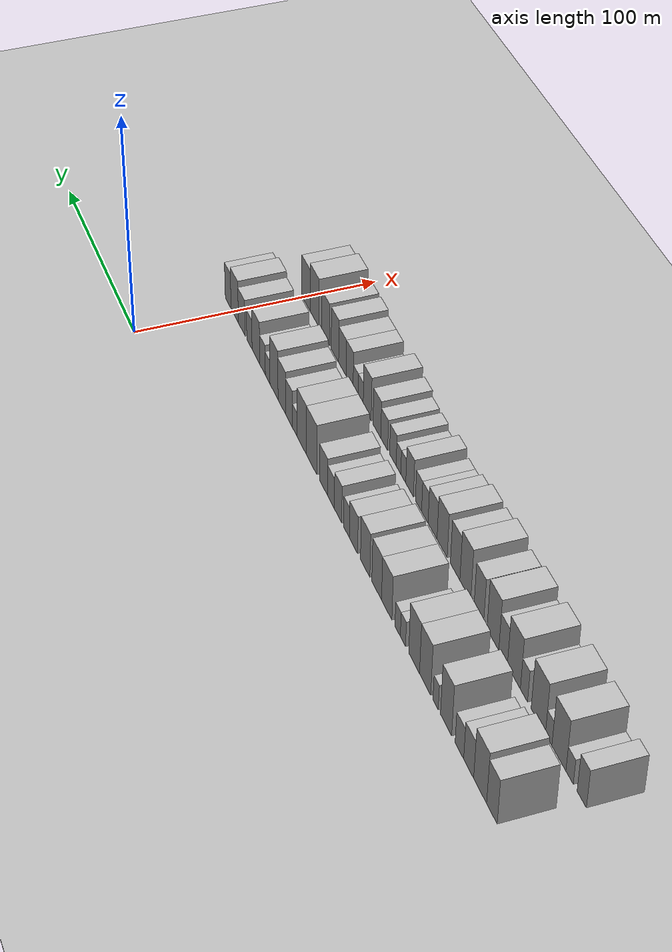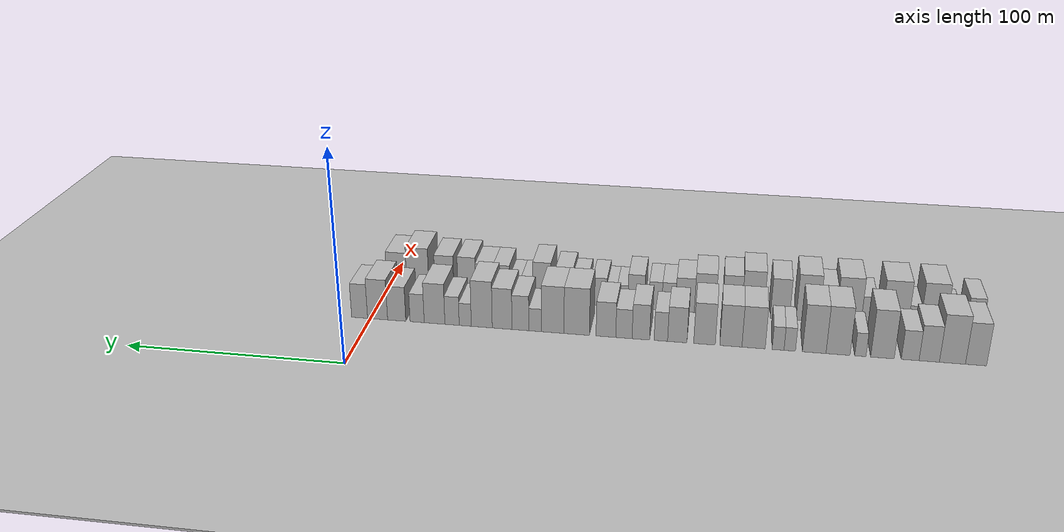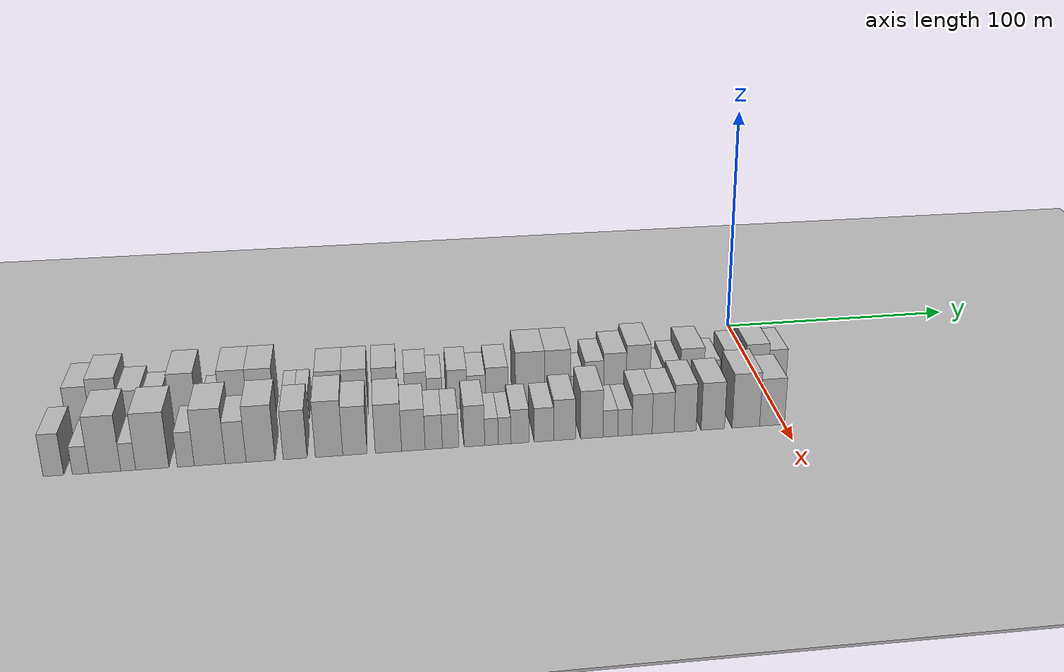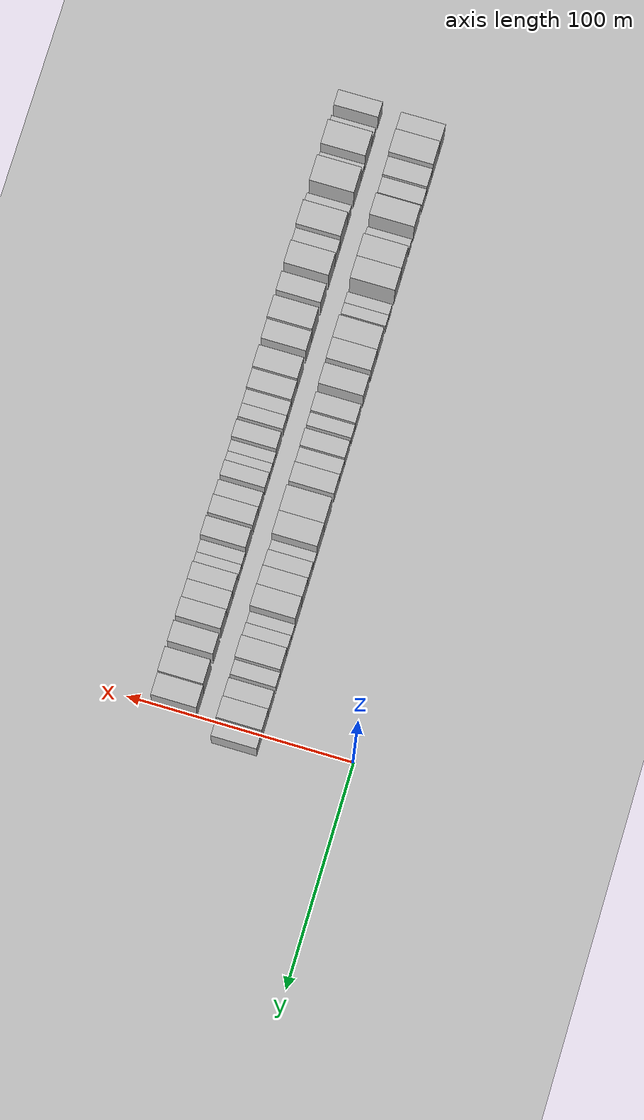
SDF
<sdf version="1.6">
 <world name="default">
  <include><name>ground_plane_1</name><uri>model://HANNAS_ground_plane</uri></include>
  <include>
   <name>ground_plane_2</name>
   <uri>model://HANNAS_ground_plane</uri>
   <pose>100 0 0  0 0 0</pose>
  </include>
  <model name="building_1">
   <static>1</static>
   <pose>50.0000 -270.5878 0 0.000000 0.000000 0.000000</pose>
   <link name="link">
    <pose>0 0 10.50 0 0 0</pose>
    <collision name="collision"><geometry><box><size>20.0000 8.8244 21.0000</size></box></geometry></collision>
    <visual name="visual">
     <cast_shadows>0</cast_shadows>
     <geometry><box><size>20.0000 8.8244 21.0000</size></box></geometry>
     <material>
      <script>
       <uri>model://HANNAS_wall/materials/scripts</uri>
       <uri>model://HANNAS_wall/materials/textures</uri>
       <name>vrc/HANNAS_wall</name>
      </script>
     </material>
    </visual>
   </link>
  </model>
  <model name="building_2">
   <static>1</static>
   <pose>50.0000 -260.7174 0 0.000000 0.000000 0.000000</pose>
   <link name="link">
    <pose>0 0 12.00 0 0 0</pose>
    <collision name="collision"><geometry><box><size>20.0000 10.9165 24.0000</size></box></geometry></collision>
    <visual name="visual">
     <cast_shadows>0</cast_shadows>
     <geometry><box><size>20.0000 10.9165 24.0000</size></box></geometry>
     <material>
      <script>
       <uri>model://HANNAS_wall/materials/scripts</uri>
       <uri>model://HANNAS_wall/materials/textures</uri>
       <name>vrc/HANNAS_wall</name>
      </script>
     </material>
    </visual>
   </link>
  </model>
  <model name="building_3">
   <static>1</static>
   <pose>50.0000 -250.9753 0 0.000000 0.000000 0.000000</pose>
   <link name="link">
    <pose>0 0 9.00 0 0 0</pose>
    <collision name="collision"><geometry><box><size>20.0000 8.5676 18.0000</size></box></geometry></collision>
    <visual name="visual">
     <cast_shadows>0</cast_shadows>
     <geometry><box><size>20.0000 8.5676 18.0000</size></box></geometry>
     <material>
      <script>
       <uri>model://HANNAS_wall/materials/scripts</uri>
       <uri>model://HANNAS_wall/materials/textures</uri>
       <name>vrc/HANNAS_wall</name>
      </script>
     </material>
    </visual>
   </link>
  </model>
  <model name="building_4">
   <static>1</static>
   <pose>50.0000 -242.9473 0 0.000000 0.000000 0.000000</pose>
   <link name="link">
    <pose>0 0 7.50 0 0 0</pose>
    <collision name="collision"><geometry><box><size>20.0000 7.4884 15.0000</size></box></geometry></collision>
    <visual name="visual">
     <cast_shadows>0</cast_shadows>
     <geometry><box><size>20.0000 7.4884 15.0000</size></box></geometry>
     <material>
      <script>
       <uri>model://HANNAS_wall/materials/scripts</uri>
       <uri>model://HANNAS_wall/materials/textures</uri>
       <name>vrc/HANNAS_wall</name>
      </script>
     </material>
    </visual>
   </link>
  </model>
  <model name="building_5">
   <static>1</static>
   <pose>50.0000 -231.1971 0 0.000000 0.000000 0.000000</pose>
   <link name="link">
    <pose>0 0 12.00 0 0 0</pose>
    <collision name="collision"><geometry><box><size>20.0000 10.0120 24.0000</size></box></geometry></collision>
    <visual name="visual">
     <cast_shadows>0</cast_shadows>
     <geometry><box><size>20.0000 10.0120 24.0000</size></box></geometry>
     <material>
      <script>
       <uri>model://HANNAS_wall/materials/scripts</uri>
       <uri>model://HANNAS_wall/materials/textures</uri>
       <name>vrc/HANNAS_wall</name>
      </script>
     </material>
    </visual>
   </link>
  </model>
  <model name="building_6">
   <static>1</static>
   <pose>50.0000 -221.7817 0 0.000000 0.000000 0.000000</pose>
   <link name="link">
    <pose>0 0 6.00 0 0 0</pose>
    <collision name="collision"><geometry><box><size>20.0000 4.8187 12.0000</size></box></geometry></collision>
    <visual name="visual">
     <cast_shadows>0</cast_shadows>
     <geometry><box><size>20.0000 4.8187 12.0000</size></box></geometry>
     <material>
      <script>
       <uri>model://HANNAS_wall/materials/scripts</uri>
       <uri>model://HANNAS_wall/materials/textures</uri>
       <name>vrc/HANNAS_wall</name>
      </script>
     </material>
    </visual>
   </link>
  </model>
  <model name="building_7">
   <static>1</static>
   <pose>50.0000 -212.1964 0 0.000000 0.000000 0.000000</pose>
   <link name="link">
    <pose>0 0 12.00 0 0 0</pose>
    <collision name="collision"><geometry><box><size>20.0000 10.3518 24.0000</size></box></geometry></collision>
    <visual name="visual">
     <cast_shadows>0</cast_shadows>
     <geometry><box><size>20.0000 10.3518 24.0000</size></box></geometry>
     <material>
      <script>
       <uri>model://HANNAS_wall/materials/scripts</uri>
       <uri>model://HANNAS_wall/materials/textures</uri>
       <name>vrc/HANNAS_wall</name>
      </script>
     </material>
    </visual>
   </link>
  </model>
  <model name="building_8">
   <static>1</static>
   <pose>50.0000 -201.9319 0 0.000000 0.000000 0.000000</pose>
   <link name="link">
    <pose>0 0 12.00 0 0 0</pose>
    <collision name="collision"><geometry><box><size>20.0000 10.1771 24.0000</size></box></geometry></collision>
    <visual name="visual">
     <cast_shadows>0</cast_shadows>
     <geometry><box><size>20.0000 10.1771 24.0000</size></box></geometry>
     <material>
      <script>
       <uri>model://HANNAS_wall/materials/scripts</uri>
       <uri>model://HANNAS_wall/materials/textures</uri>
       <name>vrc/HANNAS_wall</name>
      </script>
     </material>
    </visual>
   </link>
  </model>
  <model name="building_9">
   <static>1</static>
   <pose>50.0000 -191.3443 0 0.000000 0.000000 0.000000</pose>
   <link name="link">
    <pose>0 0 6.00 0 0 0</pose>
    <collision name="collision"><geometry><box><size>20.0000 4.9982 12.0000</size></box></geometry></collision>
    <visual name="visual">
     <cast_shadows>0</cast_shadows>
     <geometry><box><size>20.0000 4.9982 12.0000</size></box></geometry>
     <material>
      <script>
       <uri>model://HANNAS_wall/materials/scripts</uri>
       <uri>model://HANNAS_wall/materials/textures</uri>
       <name>vrc/HANNAS_wall</name>
      </script>
     </material>
    </visual>
   </link>
  </model>
  <model name="building_10">
   <static>1</static>
   <pose>50.0000 -186.2483 0 0.000000 0.000000 0.000000</pose>
   <link name="link">
    <pose>0 0 6.00 0 0 0</pose>
    <collision name="collision"><geometry><box><size>20.0000 5.1938 12.0000</size></box></geometry></collision>
    <visual name="visual">
     <cast_shadows>0</cast_shadows>
     <geometry><box><size>20.0000 5.1938 12.0000</size></box></geometry>
     <material>
      <script>
       <uri>model://HANNAS_wall/materials/scripts</uri>
       <uri>model://HANNAS_wall/materials/textures</uri>
       <name>vrc/HANNAS_wall</name>
      </script>
     </material>
    </visual>
   </link>
  </model>
  <model name="building_11">
   <static>1</static>
   <pose>50.0000 -175.5425 0 0.000000 0.000000 0.000000</pose>
   <link name="link">
    <pose>0 0 10.50 0 0 0</pose>
    <collision name="collision"><geometry><box><size>20.0000 10.2178 21.0000</size></box></geometry></collision>
    <visual name="visual">
     <cast_shadows>0</cast_shadows>
     <geometry><box><size>20.0000 10.2178 21.0000</size></box></geometry>
     <material>
      <script>
       <uri>model://HANNAS_wall/materials/scripts</uri>
       <uri>model://HANNAS_wall/materials/textures</uri>
       <name>vrc/HANNAS_wall</name>
      </script>
     </material>
    </visual>
   </link>
  </model>
  <model name="building_12">
   <static>1</static>
   <pose>50.0000 -165.5731 0 0.000000 0.000000 0.000000</pose>
   <link name="link">
    <pose>0 0 10.50 0 0 0</pose>
    <collision name="collision"><geometry><box><size>20.0000 9.7209 21.0000</size></box></geometry></collision>
    <visual name="visual">
     <cast_shadows>0</cast_shadows>
     <geometry><box><size>20.0000 9.7209 21.0000</size></box></geometry>
     <material>
      <script>
       <uri>model://HANNAS_wall/materials/scripts</uri>
       <uri>model://HANNAS_wall/materials/textures</uri>
       <name>vrc/HANNAS_wall</name>
      </script>
     </material>
    </visual>
   </link>
  </model>
  <model name="building_13">
   <static>1</static>
   <pose>50.0000 -153.9268 0 0.000000 0.000000 0.000000</pose>
   <link name="link">
    <pose>0 0 10.50 0 0 0</pose>
    <collision name="collision"><geometry><box><size>20.0000 9.5718 21.0000</size></box></geometry></collision>
    <visual name="visual">
     <cast_shadows>0</cast_shadows>
     <geometry><box><size>20.0000 9.5718 21.0000</size></box></geometry>
     <material>
      <script>
       <uri>model://HANNAS_wall/materials/scripts</uri>
       <uri>model://HANNAS_wall/materials/textures</uri>
       <name>vrc/HANNAS_wall</name>
      </script>
     </material>
    </visual>
   </link>
  </model>
  <model name="building_14">
   <static>1</static>
   <pose>50.0000 -141.8351 0 0.000000 0.000000 0.000000</pose>
   <link name="link">
    <pose>0 0 9.00 0 0 0</pose>
    <collision name="collision"><geometry><box><size>20.0000 8.6117 18.0000</size></box></geometry></collision>
    <visual name="visual">
     <cast_shadows>0</cast_shadows>
     <geometry><box><size>20.0000 8.6117 18.0000</size></box></geometry>
     <material>
      <script>
       <uri>model://HANNAS_wall/materials/scripts</uri>
       <uri>model://HANNAS_wall/materials/textures</uri>
       <name>vrc/HANNAS_wall</name>
      </script>
     </material>
    </visual>
   </link>
  </model>
  <model name="building_15">
   <static>1</static>
   <pose>50.0000 -134.5054 0 0.000000 0.000000 0.000000</pose>
   <link name="link">
    <pose>0 0 7.50 0 0 0</pose>
    <collision name="collision"><geometry><box><size>20.0000 6.0475 15.0000</size></box></geometry></collision>
    <visual name="visual">
     <cast_shadows>0</cast_shadows>
     <geometry><box><size>20.0000 6.0475 15.0000</size></box></geometry>
     <material>
      <script>
       <uri>model://HANNAS_wall/materials/scripts</uri>
       <uri>model://HANNAS_wall/materials/textures</uri>
       <name>vrc/HANNAS_wall</name>
      </script>
     </material>
    </visual>
   </link>
  </model>
  <model name="building_16">
   <static>1</static>
   <pose>50.0000 -125.5305 0 0.000000 0.000000 0.000000</pose>
   <link name="link">
    <pose>0 0 9.00 0 0 0</pose>
    <collision name="collision"><geometry><box><size>20.0000 7.9024 18.0000</size></box></geometry></collision>
    <visual name="visual">
     <cast_shadows>0</cast_shadows>
     <geometry><box><size>20.0000 7.9024 18.0000</size></box></geometry>
     <material>
      <script>
       <uri>model://HANNAS_wall/materials/scripts</uri>
       <uri>model://HANNAS_wall/materials/textures</uri>
       <name>vrc/HANNAS_wall</name>
      </script>
     </material>
    </visual>
   </link>
  </model>
  <model name="building_17">
   <static>1</static>
   <pose>50.0000 -117.8935 0 0.000000 0.000000 0.000000</pose>
   <link name="link">
    <pose>0 0 7.50 0 0 0</pose>
    <collision name="collision"><geometry><box><size>20.0000 7.3716 15.0000</size></box></geometry></collision>
    <visual name="visual">
     <cast_shadows>0</cast_shadows>
     <geometry><box><size>20.0000 7.3716 15.0000</size></box></geometry>
     <material>
      <script>
       <uri>model://HANNAS_wall/materials/scripts</uri>
       <uri>model://HANNAS_wall/materials/textures</uri>
       <name>vrc/HANNAS_wall</name>
      </script>
     </material>
    </visual>
   </link>
  </model>
  <model name="building_18">
   <static>1</static>
   <pose>50.0000 -109.7421 0 0.000000 0.000000 0.000000</pose>
   <link name="link">
    <pose>0 0 9.00 0 0 0</pose>
    <collision name="collision"><geometry><box><size>20.0000 8.9311 18.0000</size></box></geometry></collision>
    <visual name="visual">
     <cast_shadows>0</cast_shadows>
     <geometry><box><size>20.0000 8.9311 18.0000</size></box></geometry>
     <material>
      <script>
       <uri>model://HANNAS_wall/materials/scripts</uri>
       <uri>model://HANNAS_wall/materials/textures</uri>
       <name>vrc/HANNAS_wall</name>
      </script>
     </material>
    </visual>
   </link>
  </model>
  <model name="building_19">
   <static>1</static>
   <pose>50.0000 -96.4635 0 0.000000 0.000000 0.000000</pose>
   <link name="link">
    <pose>0 0 12.00 0 0 0</pose>
    <collision name="collision"><geometry><box><size>20.0000 11.6262 24.0000</size></box></geometry></collision>
    <visual name="visual">
     <cast_shadows>0</cast_shadows>
     <geometry><box><size>20.0000 11.6262 24.0000</size></box></geometry>
     <material>
      <script>
       <uri>model://HANNAS_wall/materials/scripts</uri>
       <uri>model://HANNAS_wall/materials/textures</uri>
       <name>vrc/HANNAS_wall</name>
      </script>
     </material>
    </visual>
   </link>
  </model>
  <model name="building_20">
   <static>1</static>
   <pose>50.0000 -85.4118 0 0.000000 0.000000 0.000000</pose>
   <link name="link">
    <pose>0 0 12.00 0 0 0</pose>
    <collision name="collision"><geometry><box><size>20.0000 10.4770 24.0000</size></box></geometry></collision>
    <visual name="visual">
     <cast_shadows>0</cast_shadows>
     <geometry><box><size>20.0000 10.4770 24.0000</size></box></geometry>
     <material>
      <script>
       <uri>model://HANNAS_wall/materials/scripts</uri>
       <uri>model://HANNAS_wall/materials/textures</uri>
       <name>vrc/HANNAS_wall</name>
      </script>
     </material>
    </visual>
   </link>
  </model>
  <model name="building_21">
   <static>1</static>
   <pose>50.0000 -77.3133 0 0.000000 0.000000 0.000000</pose>
   <link name="link">
    <pose>0 0 6.00 0 0 0</pose>
    <collision name="collision"><geometry><box><size>20.0000 5.7202 12.0000</size></box></geometry></collision>
    <visual name="visual">
     <cast_shadows>0</cast_shadows>
     <geometry><box><size>20.0000 5.7202 12.0000</size></box></geometry>
     <material>
      <script>
       <uri>model://HANNAS_wall/materials/scripts</uri>
       <uri>model://HANNAS_wall/materials/textures</uri>
       <name>vrc/HANNAS_wall</name>
      </script>
     </material>
    </visual>
   </link>
  </model>
  <model name="building_22">
   <static>1</static>
   <pose>50.0000 -70.5814 0 0.000000 0.000000 0.000000</pose>
   <link name="link">
    <pose>0 0 9.00 0 0 0</pose>
    <collision name="collision"><geometry><box><size>20.0000 7.7435 18.0000</size></box></geometry></collision>
    <visual name="visual">
     <cast_shadows>0</cast_shadows>
     <geometry><box><size>20.0000 7.7435 18.0000</size></box></geometry>
     <material>
      <script>
       <uri>model://HANNAS_wall/materials/scripts</uri>
       <uri>model://HANNAS_wall/materials/textures</uri>
       <name>vrc/HANNAS_wall</name>
      </script>
     </material>
    </visual>
   </link>
  </model>
  <model name="building_23">
   <static>1</static>
   <pose>50.0000 -62.1440 0 0.000000 0.000000 0.000000</pose>
   <link name="link">
    <pose>0 0 10.50 0 0 0</pose>
    <collision name="collision"><geometry><box><size>20.0000 9.1313 21.0000</size></box></geometry></collision>
    <visual name="visual">
     <cast_shadows>0</cast_shadows>
     <geometry><box><size>20.0000 9.1313 21.0000</size></box></geometry>
     <material>
      <script>
       <uri>model://HANNAS_wall/materials/scripts</uri>
       <uri>model://HANNAS_wall/materials/textures</uri>
       <name>vrc/HANNAS_wall</name>
      </script>
     </material>
    </visual>
   </link>
  </model>
  <model name="building_24">
   <static>1</static>
   <pose>50.0000 -52.6865 0 0.000000 0.000000 0.000000</pose>
   <link name="link">
    <pose>0 0 12.00 0 0 0</pose>
    <collision name="collision"><geometry><box><size>20.0000 9.7836 24.0000</size></box></geometry></collision>
    <visual name="visual">
     <cast_shadows>0</cast_shadows>
     <geometry><box><size>20.0000 9.7836 24.0000</size></box></geometry>
     <material>
      <script>
       <uri>model://HANNAS_wall/materials/scripts</uri>
       <uri>model://HANNAS_wall/materials/textures</uri>
       <name>vrc/HANNAS_wall</name>
      </script>
     </material>
    </visual>
   </link>
  </model>
  <model name="building_25">
   <static>1</static>
   <pose>50.0000 -44.9658 0 0.000000 0.000000 0.000000</pose>
   <link name="link">
    <pose>0 0 6.00 0 0 0</pose>
    <collision name="collision"><geometry><box><size>20.0000 5.6578 12.0000</size></box></geometry></collision>
    <visual name="visual">
     <cast_shadows>0</cast_shadows>
     <geometry><box><size>20.0000 5.6578 12.0000</size></box></geometry>
     <material>
      <script>
       <uri>model://HANNAS_wall/materials/scripts</uri>
       <uri>model://HANNAS_wall/materials/textures</uri>
       <name>vrc/HANNAS_wall</name>
      </script>
     </material>
    </visual>
   </link>
  </model>
  <model name="building_26">
   <static>1</static>
   <pose>50.0000 -38.7752 0 0.000000 0.000000 0.000000</pose>
   <link name="link">
    <pose>0 0 7.50 0 0 0</pose>
    <collision name="collision"><geometry><box><size>20.0000 6.7235 15.0000</size></box></geometry></collision>
    <visual name="visual">
     <cast_shadows>0</cast_shadows>
     <geometry><box><size>20.0000 6.7235 15.0000</size></box></geometry>
     <material>
      <script>
       <uri>model://HANNAS_wall/materials/scripts</uri>
       <uri>model://HANNAS_wall/materials/textures</uri>
       <name>vrc/HANNAS_wall</name>
      </script>
     </material>
    </visual>
   </link>
  </model>
  <model name="building_27">
   <static>1</static>
   <pose>50.0000 -30.5352 0 0.000000 0.000000 0.000000</pose>
   <link name="link">
    <pose>0 0 10.50 0 0 0</pose>
    <collision name="collision"><geometry><box><size>20.0000 9.7567 21.0000</size></box></geometry></collision>
    <visual name="visual">
     <cast_shadows>0</cast_shadows>
     <geometry><box><size>20.0000 9.7567 21.0000</size></box></geometry>
     <material>
      <script>
       <uri>model://HANNAS_wall/materials/scripts</uri>
       <uri>model://HANNAS_wall/materials/textures</uri>
       <name>vrc/HANNAS_wall</name>
      </script>
     </material>
    </visual>
   </link>
  </model>
  <model name="building_28">
   <static>1</static>
   <pose>50.0000 -22.3069 0 0.000000 0.000000 0.000000</pose>
   <link name="link">
    <pose>0 0 7.50 0 0 0</pose>
    <collision name="collision"><geometry><box><size>20.0000 6.6999 15.0000</size></box></geometry></collision>
    <visual name="visual">
     <cast_shadows>0</cast_shadows>
     <geometry><box><size>20.0000 6.6999 15.0000</size></box></geometry>
     <material>
      <script>
       <uri>model://HANNAS_wall/materials/scripts</uri>
       <uri>model://HANNAS_wall/materials/textures</uri>
       <name>vrc/HANNAS_wall</name>
      </script>
     </material>
    </visual>
   </link>
  </model>
  <model name="building_29">
   <static>1</static>
   <pose>50.0000 -12.6182 0 0.000000 0.000000 0.000000</pose>
   <link name="link">
    <pose>0 0 9.00 0 0 0</pose>
    <collision name="collision"><geometry><box><size>20.0000 8.6775 18.0000</size></box></geometry></collision>
    <visual name="visual">
     <cast_shadows>0</cast_shadows>
     <geometry><box><size>20.0000 8.6775 18.0000</size></box></geometry>
     <material>
      <script>
       <uri>model://HANNAS_wall/materials/scripts</uri>
       <uri>model://HANNAS_wall/materials/textures</uri>
       <name>vrc/HANNAS_wall</name>
      </script>
     </material>
    </visual>
   </link>
  </model>
  <model name="building_30">
   <static>1</static>
   <pose>50.0000 -3.4968 0 0.000000 0.000000 0.000000</pose>
   <link name="link">
    <pose>0 0 10.50 0 0 0</pose>
    <collision name="collision"><geometry><box><size>20.0000 9.5653 21.0000</size></box></geometry></collision>
    <visual name="visual">
     <cast_shadows>0</cast_shadows>
     <geometry><box><size>20.0000 9.5653 21.0000</size></box></geometry>
     <material>
      <script>
       <uri>model://HANNAS_wall/materials/scripts</uri>
       <uri>model://HANNAS_wall/materials/textures</uri>
       <name>vrc/HANNAS_wall</name>
      </script>
     </material>
    </visual>
   </link>
  </model>
  <model name="building_31">
   <static>1</static>
   <pose>50.0000 5.1058 0 0.000000 0.000000 0.000000</pose>
   <link name="link">
    <pose>0 0 9.00 0 0 0</pose>
    <collision name="collision"><geometry><box><size>20.0000 7.6399 18.0000</size></box></geometry></collision>
    <visual name="visual">
     <cast_shadows>0</cast_shadows>
     <geometry><box><size>20.0000 7.6399 18.0000</size></box></geometry>
     <material>
      <script>
       <uri>model://HANNAS_wall/materials/scripts</uri>
       <uri>model://HANNAS_wall/materials/textures</uri>
       <name>vrc/HANNAS_wall</name>
      </script>
     </material>
    </visual>
   </link>
  </model>
  <model name="building_62">
   <static>1</static>
   <pose>79.0000 -274.3850 0 0.000000 0.000000 0.000000</pose>
   <link name="link">
    <pose>0 0 9.00 0 0 0</pose>
    <collision name="collision"><geometry><box><size>20.0000 7.2299 18.0000</size></box></geometry></collision>
    <visual name="visual">
     <cast_shadows>0</cast_shadows>
     <geometry><box><size>20.0000 7.2299 18.0000</size></box></geometry>
     <material>
      <script>
       <uri>model://HANNAS_wall/materials/scripts</uri>
       <uri>model://HANNAS_wall/materials/textures</uri>
       <name>vrc/HANNAS_wall</name>
      </script>
     </material>
    </visual>
   </link>
  </model>
  <model name="building_63">
   <static>1</static>
   <pose>79.0000 -264.8488 0 0.000000 0.000000 0.000000</pose>
   <link name="link">
    <pose>0 0 6.00 0 0 0</pose>
    <collision name="collision"><geometry><box><size>20.0000 5.8426 12.0000</size></box></geometry></collision>
    <visual name="visual">
     <cast_shadows>0</cast_shadows>
     <geometry><box><size>20.0000 5.8426 12.0000</size></box></geometry>
     <material>
      <script>
       <uri>model://HANNAS_wall/materials/scripts</uri>
       <uri>model://HANNAS_wall/materials/textures</uri>
       <name>vrc/HANNAS_wall</name>
      </script>
     </material>
    </visual>
   </link>
  </model>
  <model name="building_64">
   <static>1</static>
   <pose>79.0000 -256.2770 0 0.000000 0.000000 0.000000</pose>
   <link name="link">
    <pose>0 0 12.00 0 0 0</pose>
    <collision name="collision"><geometry><box><size>20.0000 11.3010 24.0000</size></box></geometry></collision>
    <visual name="visual">
     <cast_shadows>0</cast_shadows>
     <geometry><box><size>20.0000 11.3010 24.0000</size></box></geometry>
     <material>
      <script>
       <uri>model://HANNAS_wall/materials/scripts</uri>
       <uri>model://HANNAS_wall/materials/textures</uri>
       <name>vrc/HANNAS_wall</name>
      </script>
     </material>
    </visual>
   </link>
  </model>
  <model name="building_65">
   <static>1</static>
   <pose>79.0000 -247.9805 0 0.000000 0.000000 0.000000</pose>
   <link name="link">
    <pose>0 0 6.00 0 0 0</pose>
    <collision name="collision"><geometry><box><size>20.0000 5.2920 12.0000</size></box></geometry></collision>
    <visual name="visual">
     <cast_shadows>0</cast_shadows>
     <geometry><box><size>20.0000 5.2920 12.0000</size></box></geometry>
     <material>
      <script>
       <uri>model://HANNAS_wall/materials/scripts</uri>
       <uri>model://HANNAS_wall/materials/textures</uri>
       <name>vrc/HANNAS_wall</name>
      </script>
     </material>
    </visual>
   </link>
  </model>
  <model name="building_66">
   <static>1</static>
   <pose>79.0000 -239.3951 0 0.000000 0.000000 0.000000</pose>
   <link name="link">
    <pose>0 0 12.00 0 0 0</pose>
    <collision name="collision"><geometry><box><size>20.0000 11.8787 24.0000</size></box></geometry></collision>
    <visual name="visual">
     <cast_shadows>0</cast_shadows>
     <geometry><box><size>20.0000 11.8787 24.0000</size></box></geometry>
     <material>
      <script>
       <uri>model://HANNAS_wall/materials/scripts</uri>
       <uri>model://HANNAS_wall/materials/textures</uri>
       <name>vrc/HANNAS_wall</name>
      </script>
     </material>
    </visual>
   </link>
  </model>
  <model name="building_67">
   <static>1</static>
   <pose>79.0000 -227.4109 0 0.000000 0.000000 0.000000</pose>
   <link name="link">
    <pose>0 0 7.50 0 0 0</pose>
    <collision name="collision"><geometry><box><size>20.0000 6.0897 15.0000</size></box></geometry></collision>
    <visual name="visual">
     <cast_shadows>0</cast_shadows>
     <geometry><box><size>20.0000 6.0897 15.0000</size></box></geometry>
     <material>
      <script>
       <uri>model://HANNAS_wall/materials/scripts</uri>
       <uri>model://HANNAS_wall/materials/textures</uri>
       <name>vrc/HANNAS_wall</name>
      </script>
     </material>
    </visual>
   </link>
  </model>
  <model name="building_68">
   <static>1</static>
   <pose>79.0000 -218.7669 0 0.000000 0.000000 0.000000</pose>
   <link name="link">
    <pose>0 0 12.00 0 0 0</pose>
    <collision name="collision"><geometry><box><size>20.0000 11.1985 24.0000</size></box></geometry></collision>
    <visual name="visual">
     <cast_shadows>0</cast_shadows>
     <geometry><box><size>20.0000 11.1985 24.0000</size></box></geometry>
     <material>
      <script>
       <uri>model://HANNAS_wall/materials/scripts</uri>
       <uri>model://HANNAS_wall/materials/textures</uri>
       <name>vrc/HANNAS_wall</name>
      </script>
     </material>
    </visual>
   </link>
  </model>
  <model name="building_69">
   <static>1</static>
   <pose>79.0000 -209.3993 0 0.000000 0.000000 0.000000</pose>
   <link name="link">
    <pose>0 0 9.00 0 0 0</pose>
    <collision name="collision"><geometry><box><size>20.0000 7.5368 18.0000</size></box></geometry></collision>
    <visual name="visual">
     <cast_shadows>0</cast_shadows>
     <geometry><box><size>20.0000 7.5368 18.0000</size></box></geometry>
     <material>
      <script>
       <uri>model://HANNAS_wall/materials/scripts</uri>
       <uri>model://HANNAS_wall/materials/textures</uri>
       <name>vrc/HANNAS_wall</name>
      </script>
     </material>
    </visual>
   </link>
  </model>
  <model name="building_70">
   <static>1</static>
   <pose>79.0000 -200.3698 0 0.000000 0.000000 0.000000</pose>
   <link name="link">
    <pose>0 0 12.00 0 0 0</pose>
    <collision name="collision"><geometry><box><size>20.0000 10.5223 24.0000</size></box></geometry></collision>
    <visual name="visual">
     <cast_shadows>0</cast_shadows>
     <geometry><box><size>20.0000 10.5223 24.0000</size></box></geometry>
     <material>
      <script>
       <uri>model://HANNAS_wall/materials/scripts</uri>
       <uri>model://HANNAS_wall/materials/textures</uri>
       <name>vrc/HANNAS_wall</name>
      </script>
     </material>
    </visual>
   </link>
  </model>
  <model name="building_71">
   <static>1</static>
   <pose>79.0000 -187.7248 0 0.000000 0.000000 0.000000</pose>
   <link name="link">
    <pose>0 0 10.50 0 0 0</pose>
    <collision name="collision"><geometry><box><size>20.0000 8.7676 21.0000</size></box></geometry></collision>
    <visual name="visual">
     <cast_shadows>0</cast_shadows>
     <geometry><box><size>20.0000 8.7676 21.0000</size></box></geometry>
     <material>
      <script>
       <uri>model://HANNAS_wall/materials/scripts</uri>
       <uri>model://HANNAS_wall/materials/textures</uri>
       <name>vrc/HANNAS_wall</name>
      </script>
     </material>
    </visual>
   </link>
  </model>
  <model name="building_72">
   <static>1</static>
   <pose>79.0000 -175.2675 0 0.000000 0.000000 0.000000</pose>
   <link name="link">
    <pose>0 0 12.00 0 0 0</pose>
    <collision name="collision"><geometry><box><size>20.0000 10.1471 24.0000</size></box></geometry></collision>
    <visual name="visual">
     <cast_shadows>0</cast_shadows>
     <geometry><box><size>20.0000 10.1471 24.0000</size></box></geometry>
     <material>
      <script>
       <uri>model://HANNAS_wall/materials/scripts</uri>
       <uri>model://HANNAS_wall/materials/textures</uri>
       <name>vrc/HANNAS_wall</name>
      </script>
     </material>
    </visual>
   </link>
  </model>
  <model name="building_73">
   <static>1</static>
   <pose>79.0000 -165.6837 0 0.000000 0.000000 0.000000</pose>
   <link name="link">
    <pose>0 0 10.50 0 0 0</pose>
    <collision name="collision"><geometry><box><size>20.0000 9.0206 21.0000</size></box></geometry></collision>
    <visual name="visual">
     <cast_shadows>0</cast_shadows>
     <geometry><box><size>20.0000 9.0206 21.0000</size></box></geometry>
     <material>
      <script>
       <uri>model://HANNAS_wall/materials/scripts</uri>
       <uri>model://HANNAS_wall/materials/textures</uri>
       <name>vrc/HANNAS_wall</name>
      </script>
     </material>
    </visual>
   </link>
  </model>
  <model name="building_74">
   <static>1</static>
   <pose>79.0000 -153.2430 0 0.000000 0.000000 0.000000</pose>
   <link name="link">
    <pose>0 0 10.50 0 0 0</pose>
    <collision name="collision"><geometry><box><size>20.0000 9.8607 21.0000</size></box></geometry></collision>
    <visual name="visual">
     <cast_shadows>0</cast_shadows>
     <geometry><box><size>20.0000 9.8607 21.0000</size></box></geometry>
     <material>
      <script>
       <uri>model://HANNAS_wall/materials/scripts</uri>
       <uri>model://HANNAS_wall/materials/textures</uri>
       <name>vrc/HANNAS_wall</name>
      </script>
     </material>
    </visual>
   </link>
  </model>
  <model name="building_75">
   <static>1</static>
   <pose>79.0000 -143.9045 0 0.000000 0.000000 0.000000</pose>
   <link name="link">
    <pose>0 0 9.00 0 0 0</pose>
    <collision name="collision"><geometry><box><size>20.0000 8.8164 18.0000</size></box></geometry></collision>
    <visual name="visual">
     <cast_shadows>0</cast_shadows>
     <geometry><box><size>20.0000 8.8164 18.0000</size></box></geometry>
     <material>
      <script>
       <uri>model://HANNAS_wall/materials/scripts</uri>
       <uri>model://HANNAS_wall/materials/textures</uri>
       <name>vrc/HANNAS_wall</name>
      </script>
     </material>
    </visual>
   </link>
  </model>
  <model name="building_76">
   <static>1</static>
   <pose>79.0000 -136.2761 0 0.000000 0.000000 0.000000</pose>
   <link name="link">
    <pose>0 0 7.50 0 0 0</pose>
    <collision name="collision"><geometry><box><size>20.0000 6.4404 15.0000</size></box></geometry></collision>
    <visual name="visual">
     <cast_shadows>0</cast_shadows>
     <geometry><box><size>20.0000 6.4404 15.0000</size></box></geometry>
     <material>
      <script>
       <uri>model://HANNAS_wall/materials/scripts</uri>
       <uri>model://HANNAS_wall/materials/textures</uri>
       <name>vrc/HANNAS_wall</name>
      </script>
     </material>
    </visual>
   </link>
  </model>
  <model name="building_77">
   <static>1</static>
   <pose>79.0000 -129.9518 0 0.000000 0.000000 0.000000</pose>
   <link name="link">
    <pose>0 0 7.50 0 0 0</pose>
    <collision name="collision"><geometry><box><size>20.0000 6.2082 15.0000</size></box></geometry></collision>
    <visual name="visual">
     <cast_shadows>0</cast_shadows>
     <geometry><box><size>20.0000 6.2082 15.0000</size></box></geometry>
     <material>
      <script>
       <uri>model://HANNAS_wall/materials/scripts</uri>
       <uri>model://HANNAS_wall/materials/textures</uri>
       <name>vrc/HANNAS_wall</name>
      </script>
     </material>
    </visual>
   </link>
  </model>
  <model name="building_78">
   <static>1</static>
   <pose>79.0000 -120.9470 0 0.000000 0.000000 0.000000</pose>
   <link name="link">
    <pose>0 0 9.00 0 0 0</pose>
    <collision name="collision"><geometry><box><size>20.0000 7.8013 18.0000</size></box></geometry></collision>
    <visual name="visual">
     <cast_shadows>0</cast_shadows>
     <geometry><box><size>20.0000 7.8013 18.0000</size></box></geometry>
     <material>
      <script>
       <uri>model://HANNAS_wall/materials/scripts</uri>
       <uri>model://HANNAS_wall/materials/textures</uri>
       <name>vrc/HANNAS_wall</name>
      </script>
     </material>
    </visual>
   </link>
  </model>
  <model name="building_79">
   <static>1</static>
   <pose>79.0000 -114.4750 0 0.000000 0.000000 0.000000</pose>
   <link name="link">
    <pose>0 0 6.00 0 0 0</pose>
    <collision name="collision"><geometry><box><size>20.0000 5.1426 12.0000</size></box></geometry></collision>
    <visual name="visual">
     <cast_shadows>0</cast_shadows>
     <geometry><box><size>20.0000 5.1426 12.0000</size></box></geometry>
     <material>
      <script>
       <uri>model://HANNAS_wall/materials/scripts</uri>
       <uri>model://HANNAS_wall/materials/textures</uri>
       <name>vrc/HANNAS_wall</name>
      </script>
     </material>
    </visual>
   </link>
  </model>
  <model name="building_80">
   <static>1</static>
   <pose>79.0000 -109.4943 0 0.000000 0.000000 0.000000</pose>
   <link name="link">
    <pose>0 0 6.00 0 0 0</pose>
    <collision name="collision"><geometry><box><size>20.0000 4.8187 12.0000</size></box></geometry></collision>
    <visual name="visual">
     <cast_shadows>0</cast_shadows>
     <geometry><box><size>20.0000 4.8187 12.0000</size></box></geometry>
     <material>
      <script>
       <uri>model://HANNAS_wall/materials/scripts</uri>
       <uri>model://HANNAS_wall/materials/textures</uri>
       <name>vrc/HANNAS_wall</name>
      </script>
     </material>
    </visual>
   </link>
  </model>
  <model name="building_81">
   <static>1</static>
   <pose>79.0000 -103.6256 0 0.000000 0.000000 0.000000</pose>
   <link name="link">
    <pose>0 0 7.50 0 0 0</pose>
    <collision name="collision"><geometry><box><size>20.0000 6.9189 15.0000</size></box></geometry></collision>
    <visual name="visual">
     <cast_shadows>0</cast_shadows>
     <geometry><box><size>20.0000 6.9189 15.0000</size></box></geometry>
     <material>
      <script>
       <uri>model://HANNAS_wall/materials/scripts</uri>
       <uri>model://HANNAS_wall/materials/textures</uri>
       <name>vrc/HANNAS_wall</name>
      </script>
     </material>
    </visual>
   </link>
  </model>
  <model name="building_82">
   <static>1</static>
   <pose>79.0000 -94.4573 0 0.000000 0.000000 0.000000</pose>
   <link name="link">
    <pose>0 0 7.50 0 0 0</pose>
    <collision name="collision"><geometry><box><size>20.0000 7.4176 15.0000</size></box></geometry></collision>
    <visual name="visual">
     <cast_shadows>0</cast_shadows>
     <geometry><box><size>20.0000 7.4176 15.0000</size></box></geometry>
     <material>
      <script>
       <uri>model://HANNAS_wall/materials/scripts</uri>
       <uri>model://HANNAS_wall/materials/textures</uri>
       <name>vrc/HANNAS_wall</name>
      </script>
     </material>
    </visual>
   </link>
  </model>
  <model name="building_83">
   <static>1</static>
   <pose>79.0000 -86.5653 0 0.000000 0.000000 0.000000</pose>
   <link name="link">
    <pose>0 0 9.00 0 0 0</pose>
    <collision name="collision"><geometry><box><size>20.0000 8.3665 18.0000</size></box></geometry></collision>
    <visual name="visual">
     <cast_shadows>0</cast_shadows>
     <geometry><box><size>20.0000 8.3665 18.0000</size></box></geometry>
     <material>
      <script>
       <uri>model://HANNAS_wall/materials/scripts</uri>
       <uri>model://HANNAS_wall/materials/textures</uri>
       <name>vrc/HANNAS_wall</name>
      </script>
     </material>
    </visual>
   </link>
  </model>
  <model name="building_84">
   <static>1</static>
   <pose>79.0000 -76.0252 0 0.000000 0.000000 0.000000</pose>
   <link name="link">
    <pose>0 0 10.50 0 0 0</pose>
    <collision name="collision"><geometry><box><size>20.0000 8.7137 21.0000</size></box></geometry></collision>
    <visual name="visual">
     <cast_shadows>0</cast_shadows>
     <geometry><box><size>20.0000 8.7137 21.0000</size></box></geometry>
     <material>
      <script>
       <uri>model://HANNAS_wall/materials/scripts</uri>
       <uri>model://HANNAS_wall/materials/textures</uri>
       <name>vrc/HANNAS_wall</name>
      </script>
     </material>
    </visual>
   </link>
  </model>
  <model name="building_85">
   <static>1</static>
   <pose>79.0000 -68.8217 0 0.000000 0.000000 0.000000</pose>
   <link name="link">
    <pose>0 0 6.00 0 0 0</pose>
    <collision name="collision"><geometry><box><size>20.0000 5.6934 12.0000</size></box></geometry></collision>
    <visual name="visual">
     <cast_shadows>0</cast_shadows>
     <geometry><box><size>20.0000 5.6934 12.0000</size></box></geometry>
     <material>
      <script>
       <uri>model://HANNAS_wall/materials/scripts</uri>
       <uri>model://HANNAS_wall/materials/textures</uri>
       <name>vrc/HANNAS_wall</name>
      </script>
     </material>
    </visual>
   </link>
  </model>
  <model name="building_86">
   <static>1</static>
   <pose>79.0000 -63.1987 0 0.000000 0.000000 0.000000</pose>
   <link name="link">
    <pose>0 0 6.00 0 0 0</pose>
    <collision name="collision"><geometry><box><size>20.0000 5.5525 12.0000</size></box></geometry></collision>
    <visual name="visual">
     <cast_shadows>0</cast_shadows>
     <geometry><box><size>20.0000 5.5525 12.0000</size></box></geometry>
     <material>
      <script>
       <uri>model://HANNAS_wall/materials/scripts</uri>
       <uri>model://HANNAS_wall/materials/textures</uri>
       <name>vrc/HANNAS_wall</name>
      </script>
     </material>
    </visual>
   </link>
  </model>
  <model name="building_87">
   <static>1</static>
   <pose>79.0000 -56.4975 0 0.000000 0.000000 0.000000</pose>
   <link name="link">
    <pose>0 0 9.00 0 0 0</pose>
    <collision name="collision"><geometry><box><size>20.0000 7.8499 18.0000</size></box></geometry></collision>
    <visual name="visual">
     <cast_shadows>0</cast_shadows>
     <geometry><box><size>20.0000 7.8499 18.0000</size></box></geometry>
     <material>
      <script>
       <uri>model://HANNAS_wall/materials/scripts</uri>
       <uri>model://HANNAS_wall/materials/textures</uri>
       <name>vrc/HANNAS_wall</name>
      </script>
     </material>
    </visual>
   </link>
  </model>
  <model name="building_88">
   <static>1</static>
   <pose>79.0000 -48.2520 0 0.000000 0.000000 0.000000</pose>
   <link name="link">
    <pose>0 0 9.00 0 0 0</pose>
    <collision name="collision"><geometry><box><size>20.0000 8.6411 18.0000</size></box></geometry></collision>
    <visual name="visual">
     <cast_shadows>0</cast_shadows>
     <geometry><box><size>20.0000 8.6411 18.0000</size></box></geometry>
     <material>
      <script>
       <uri>model://HANNAS_wall/materials/scripts</uri>
       <uri>model://HANNAS_wall/materials/textures</uri>
       <name>vrc/HANNAS_wall</name>
      </script>
     </material>
    </visual>
   </link>
  </model>
  <model name="building_89">
   <static>1</static>
   <pose>79.0000 -39.5945 0 0.000000 0.000000 0.000000</pose>
   <link name="link">
    <pose>0 0 10.50 0 0 0</pose>
    <collision name="collision"><geometry><box><size>20.0000 8.6741 21.0000</size></box></geometry></collision>
    <visual name="visual">
     <cast_shadows>0</cast_shadows>
     <geometry><box><size>20.0000 8.6741 21.0000</size></box></geometry>
     <material>
      <script>
       <uri>model://HANNAS_wall/materials/scripts</uri>
       <uri>model://HANNAS_wall/materials/textures</uri>
       <name>vrc/HANNAS_wall</name>
      </script>
     </material>
    </visual>
   </link>
  </model>
  <model name="building_90">
   <static>1</static>
   <pose>79.0000 -28.6208 0 0.000000 0.000000 0.000000</pose>
   <link name="link">
    <pose>0 0 10.50 0 0 0</pose>
    <collision name="collision"><geometry><box><size>20.0000 9.2733 21.0000</size></box></geometry></collision>
    <visual name="visual">
     <cast_shadows>0</cast_shadows>
     <geometry><box><size>20.0000 9.2733 21.0000</size></box></geometry>
     <material>
      <script>
       <uri>model://HANNAS_wall/materials/scripts</uri>
       <uri>model://HANNAS_wall/materials/textures</uri>
       <name>vrc/HANNAS_wall</name>
      </script>
     </material>
    </visual>
   </link>
  </model>
  <model name="building_91">
   <static>1</static>
   <pose>79.0000 -15.5311 0 0.000000 0.000000 0.000000</pose>
   <link name="link">
    <pose>0 0 12.00 0 0 0</pose>
    <collision name="collision"><geometry><box><size>20.0000 10.9062 24.0000</size></box></geometry></collision>
    <visual name="visual">
     <cast_shadows>0</cast_shadows>
     <geometry><box><size>20.0000 10.9062 24.0000</size></box></geometry>
     <material>
      <script>
       <uri>model://HANNAS_wall/materials/scripts</uri>
       <uri>model://HANNAS_wall/materials/textures</uri>
       <name>vrc/HANNAS_wall</name>
      </script>
     </material>
    </visual>
   </link>
  </model>
  <model name="building_92">
   <static>1</static>
   <pose>79.0000 -5.0914 0 0.000000 0.000000 0.000000</pose>
   <link name="link">
    <pose>0 0 10.50 0 0 0</pose>
    <collision name="collision"><geometry><box><size>20.0000 9.9732 21.0000</size></box></geometry></collision>
    <visual name="visual">
     <cast_shadows>0</cast_shadows>
     <geometry><box><size>20.0000 9.9732 21.0000</size></box></geometry>
     <material>
      <script>
       <uri>model://HANNAS_wall/materials/scripts</uri>
       <uri>model://HANNAS_wall/materials/textures</uri>
       <name>vrc/HANNAS_wall</name>
      </script>
     </material>
    </visual>
   </link>
  </model>
 </world>
</sdf>
